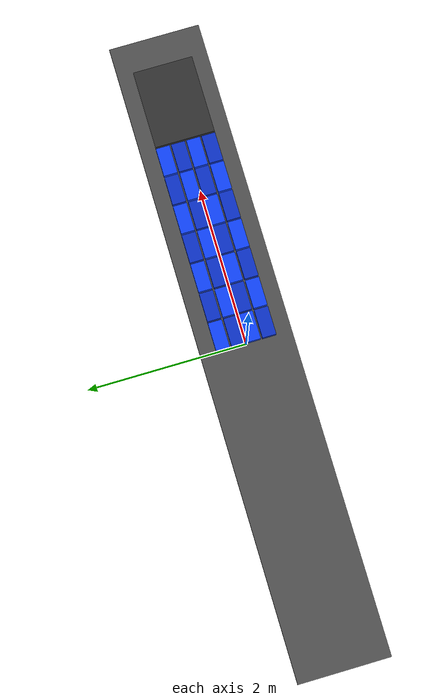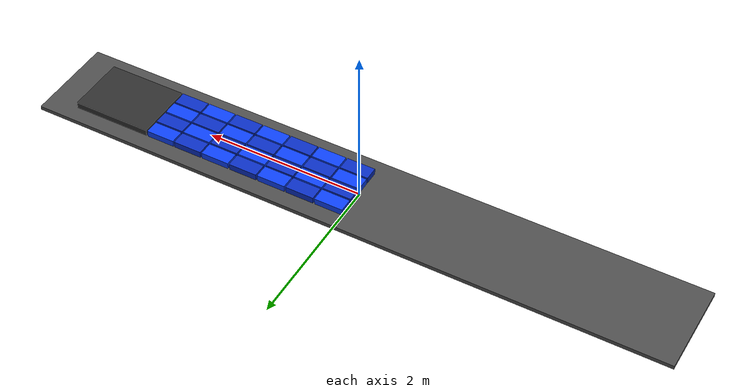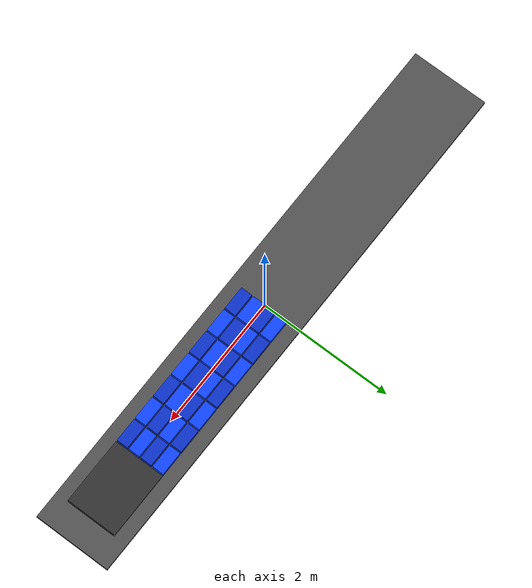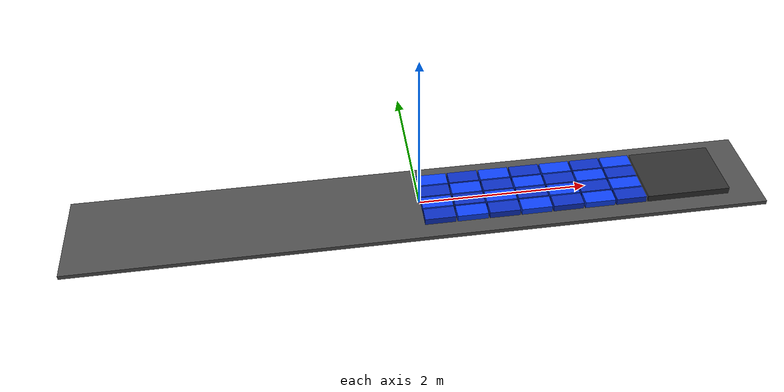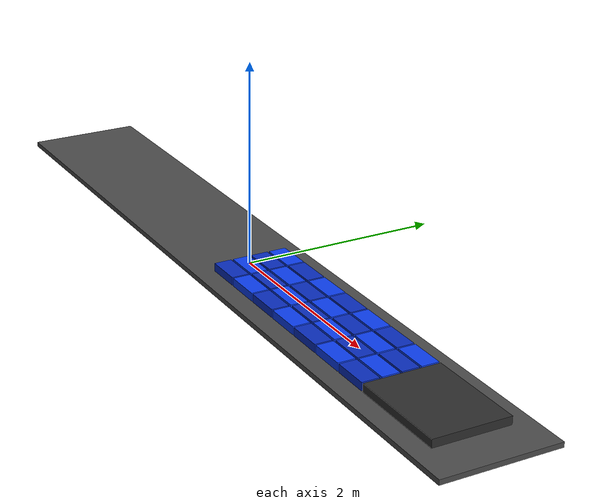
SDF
<sdf version="1.10">
 <world name="matrix_14x4_stream">
  <model name="platform">
   <static>true</static>
   <pose>0 0 -0.025 0 0 0</pose>
   <link name="platform_link">
    <collision name="platform_collision">
     <geometry><box><size>8.140000
                1.160000
                0.05</size></box></geometry>
    </collision>
    <visual name="platform_visual">
     <geometry><box><size>8.140000
                1.160000
                0.05</size></box></geometry>
     <material><ambient>0.20 0.20 0.20 1</ambient><diffuse>0.30 0.30 0.30 1</diffuse></material>
    </visual>
   </link>
  </model>
  <model name="cell_r12_c00">
   <static>true</static>
   <pose>2.090000 -0.292500 0 0 0 0</pose>
   <link name="belt">
    <pose>0 0 0.040000 0 0 0</pose>
    <collision name="belt_collision">
     <max_contacts>4</max_contacts>
     <geometry><box><size>0.360000 0.175000 0.080000</size></box></geometry>
     <surface><friction><ode><mu>0.8</mu><mu2>0.2</mu2><fdir1>1 0 0</fdir1></ode></friction></surface>
    </collision>
    <visual name="belt_visual">
     <geometry><box><size>0.360000 0.175000 0.080000</size></box></geometry>
     <material><ambient>0.050 0.250 0.950 1</ambient><diffuse>0.050 0.250 0.950 1</diffuse></material>
    </visual>
   </link>
   <plugin filename="gz-sim-track-controller-system" name="gz::sim::systems::TrackController">
    <link>belt</link>
    <track_orientation>0 0 0</track_orientation>
    <velocity_topic>/singulator/cell/r12_c00/cmd_vel</velocity_topic>
    <odometry_topic>/singulator/cell/r12_c00/odometry</odometry_topic>
    <odometry_publish_frequency>1</odometry_publish_frequency>
    <min_velocity>-2.0</min_velocity>
    <max_velocity>2.0</max_velocity>
    <min_acceleration>-2.5</min_acceleration>
    <max_acceleration>2.5</max_acceleration>
    <min_jerk>-10.0</min_jerk>
    <max_jerk>10.0</max_jerk>
    <max_command_age>2.0</max_command_age>
   </plugin>
  </model>
  <model name="cell_r12_c01">
   <static>true</static>
   <pose>2.090000 -0.097500 0 0 0 0</pose>
   <link name="belt">
    <pose>0 0 0.040000 0 0 0</pose>
    <collision name="belt_collision">
     <max_contacts>4</max_contacts>
     <geometry><box><size>0.360000 0.175000 0.080000</size></box></geometry>
     <surface><friction><ode><mu>0.8</mu><mu2>0.2</mu2><fdir1>1 0 0</fdir1></ode></friction></surface>
    </collision>
    <visual name="belt_visual">
     <geometry><box><size>0.360000 0.175000 0.080000</size></box></geometry>
     <material><ambient>0.040 0.180 0.750 1</ambient><diffuse>0.040 0.180 0.750 1</diffuse></material>
    </visual>
   </link>
   <plugin filename="gz-sim-track-controller-system" name="gz::sim::systems::TrackController">
    <link>belt</link>
    <track_orientation>0 0 0</track_orientation>
    <velocity_topic>/singulator/cell/r12_c01/cmd_vel</velocity_topic>
    <odometry_topic>/singulator/cell/r12_c01/odometry</odometry_topic>
    <odometry_publish_frequency>1</odometry_publish_frequency>
    <min_velocity>-2.0</min_velocity>
    <max_velocity>2.0</max_velocity>
    <min_acceleration>-2.5</min_acceleration>
    <max_acceleration>2.5</max_acceleration>
    <min_jerk>-10.0</min_jerk>
    <max_jerk>10.0</max_jerk>
    <max_command_age>2.0</max_command_age>
   </plugin>
  </model>
  <model name="cell_r12_c02">
   <static>true</static>
   <pose>2.090000 0.097500 0 0 0 0</pose>
   <link name="belt">
    <pose>0 0 0.040000 0 0 0</pose>
    <collision name="belt_collision">
     <max_contacts>4</max_contacts>
     <geometry><box><size>0.360000 0.175000 0.080000</size></box></geometry>
     <surface><friction><ode><mu>0.8</mu><mu2>0.2</mu2><fdir1>1 0 0</fdir1></ode></friction></surface>
    </collision>
    <visual name="belt_visual">
     <geometry><box><size>0.360000 0.175000 0.080000</size></box></geometry>
     <material><ambient>0.050 0.250 0.950 1</ambient><diffuse>0.050 0.250 0.950 1</diffuse></material>
    </visual>
   </link>
   <plugin filename="gz-sim-track-controller-system" name="gz::sim::systems::TrackController">
    <link>belt</link>
    <track_orientation>0 0 0</track_orientation>
    <velocity_topic>/singulator/cell/r12_c02/cmd_vel</velocity_topic>
    <odometry_topic>/singulator/cell/r12_c02/odometry</odometry_topic>
    <odometry_publish_frequency>1</odometry_publish_frequency>
    <min_velocity>-2.0</min_velocity>
    <max_velocity>2.0</max_velocity>
    <min_acceleration>-2.5</min_acceleration>
    <max_acceleration>2.5</max_acceleration>
    <min_jerk>-10.0</min_jerk>
    <max_jerk>10.0</max_jerk>
    <max_command_age>2.0</max_command_age>
   </plugin>
  </model>
  <model name="cell_r12_c03">
   <static>true</static>
   <pose>2.090000 0.292500 0 0 0 0</pose>
   <link name="belt">
    <pose>0 0 0.040000 0 0 0</pose>
    <collision name="belt_collision">
     <max_contacts>4</max_contacts>
     <geometry><box><size>0.360000 0.175000 0.080000</size></box></geometry>
     <surface><friction><ode><mu>0.8</mu><mu2>0.2</mu2><fdir1>1 0 0</fdir1></ode></friction></surface>
    </collision>
    <visual name="belt_visual">
     <geometry><box><size>0.360000 0.175000 0.080000</size></box></geometry>
     <material><ambient>0.040 0.180 0.750 1</ambient><diffuse>0.040 0.180 0.750 1</diffuse></material>
    </visual>
   </link>
   <plugin filename="gz-sim-track-controller-system" name="gz::sim::systems::TrackController">
    <link>belt</link>
    <track_orientation>0 0 0</track_orientation>
    <velocity_topic>/singulator/cell/r12_c03/cmd_vel</velocity_topic>
    <odometry_topic>/singulator/cell/r12_c03/odometry</odometry_topic>
    <odometry_publish_frequency>1</odometry_publish_frequency>
    <min_velocity>-2.0</min_velocity>
    <max_velocity>2.0</max_velocity>
    <min_acceleration>-2.5</min_acceleration>
    <max_acceleration>2.5</max_acceleration>
    <min_jerk>-10.0</min_jerk>
    <max_jerk>10.0</max_jerk>
    <max_command_age>2.0</max_command_age>
   </plugin>
  </model>
  <model name="cell_r13_c00">
   <static>true</static>
   <pose>2.470000 -0.292500 0 0 0 0</pose>
   <link name="belt">
    <pose>0 0 0.040000 0 0 0</pose>
    <collision name="belt_collision">
     <max_contacts>4</max_contacts>
     <geometry><box><size>0.360000 0.175000 0.080000</size></box></geometry>
     <surface><friction><ode><mu>0.8</mu><mu2>0.2</mu2><fdir1>1 0 0</fdir1></ode></friction></surface>
    </collision>
    <visual name="belt_visual">
     <geometry><box><size>0.360000 0.175000 0.080000</size></box></geometry>
     <material><ambient>0.040 0.180 0.750 1</ambient><diffuse>0.040 0.180 0.750 1</diffuse></material>
    </visual>
   </link>
   <plugin filename="gz-sim-track-controller-system" name="gz::sim::systems::TrackController">
    <link>belt</link>
    <track_orientation>0 0 0</track_orientation>
    <velocity_topic>/singulator/cell/r13_c00/cmd_vel</velocity_topic>
    <odometry_topic>/singulator/cell/r13_c00/odometry</odometry_topic>
    <odometry_publish_frequency>1</odometry_publish_frequency>
    <min_velocity>-2.0</min_velocity>
    <max_velocity>2.0</max_velocity>
    <min_acceleration>-2.5</min_acceleration>
    <max_acceleration>2.5</max_acceleration>
    <min_jerk>-10.0</min_jerk>
    <max_jerk>10.0</max_jerk>
    <max_command_age>2.0</max_command_age>
   </plugin>
  </model>
  <model name="cell_r13_c01">
   <static>true</static>
   <pose>2.470000 -0.097500 0 0 0 0</pose>
   <link name="belt">
    <pose>0 0 0.040000 0 0 0</pose>
    <collision name="belt_collision">
     <max_contacts>4</max_contacts>
     <geometry><box><size>0.360000 0.175000 0.080000</size></box></geometry>
     <surface><friction><ode><mu>0.8</mu><mu2>0.2</mu2><fdir1>1 0 0</fdir1></ode></friction></surface>
    </collision>
    <visual name="belt_visual">
     <geometry><box><size>0.360000 0.175000 0.080000</size></box></geometry>
     <material><ambient>0.050 0.250 0.950 1</ambient><diffuse>0.050 0.250 0.950 1</diffuse></material>
    </visual>
   </link>
   <plugin filename="gz-sim-track-controller-system" name="gz::sim::systems::TrackController">
    <link>belt</link>
    <track_orientation>0 0 0</track_orientation>
    <velocity_topic>/singulator/cell/r13_c01/cmd_vel</velocity_topic>
    <odometry_topic>/singulator/cell/r13_c01/odometry</odometry_topic>
    <odometry_publish_frequency>1</odometry_publish_frequency>
    <min_velocity>-2.0</min_velocity>
    <max_velocity>2.0</max_velocity>
    <min_acceleration>-2.5</min_acceleration>
    <max_acceleration>2.5</max_acceleration>
    <min_jerk>-10.0</min_jerk>
    <max_jerk>10.0</max_jerk>
    <max_command_age>2.0</max_command_age>
   </plugin>
  </model>
  <model name="cell_r13_c02">
   <static>true</static>
   <pose>2.470000 0.097500 0 0 0 0</pose>
   <link name="belt">
    <pose>0 0 0.040000 0 0 0</pose>
    <collision name="belt_collision">
     <max_contacts>4</max_contacts>
     <geometry><box><size>0.360000 0.175000 0.080000</size></box></geometry>
     <surface><friction><ode><mu>0.8</mu><mu2>0.2</mu2><fdir1>1 0 0</fdir1></ode></friction></surface>
    </collision>
    <visual name="belt_visual">
     <geometry><box><size>0.360000 0.175000 0.080000</size></box></geometry>
     <material><ambient>0.040 0.180 0.750 1</ambient><diffuse>0.040 0.180 0.750 1</diffuse></material>
    </visual>
   </link>
   <plugin filename="gz-sim-track-controller-system" name="gz::sim::systems::TrackController">
    <link>belt</link>
    <track_orientation>0 0 0</track_orientation>
    <velocity_topic>/singulator/cell/r13_c02/cmd_vel</velocity_topic>
    <odometry_topic>/singulator/cell/r13_c02/odometry</odometry_topic>
    <odometry_publish_frequency>1</odometry_publish_frequency>
    <min_velocity>-2.0</min_velocity>
    <max_velocity>2.0</max_velocity>
    <min_acceleration>-2.5</min_acceleration>
    <max_acceleration>2.5</max_acceleration>
    <min_jerk>-10.0</min_jerk>
    <max_jerk>10.0</max_jerk>
    <max_command_age>2.0</max_command_age>
   </plugin>
  </model>
  <model name="cell_r13_c03">
   <static>true</static>
   <pose>2.470000 0.292500 0 0 0 0</pose>
   <link name="belt">
    <pose>0 0 0.040000 0 0 0</pose>
    <collision name="belt_collision">
     <max_contacts>4</max_contacts>
     <geometry><box><size>0.360000 0.175000 0.080000</size></box></geometry>
     <surface><friction><ode><mu>0.8</mu><mu2>0.2</mu2><fdir1>1 0 0</fdir1></ode></friction></surface>
    </collision>
    <visual name="belt_visual">
     <geometry><box><size>0.360000 0.175000 0.080000</size></box></geometry>
     <material><ambient>0.050 0.250 0.950 1</ambient><diffuse>0.050 0.250 0.950 1</diffuse></material>
    </visual>
   </link>
   <plugin filename="gz-sim-track-controller-system" name="gz::sim::systems::TrackController">
    <link>belt</link>
    <track_orientation>0 0 0</track_orientation>
    <velocity_topic>/singulator/cell/r13_c03/cmd_vel</velocity_topic>
    <odometry_topic>/singulator/cell/r13_c03/odometry</odometry_topic>
    <odometry_publish_frequency>1</odometry_publish_frequency>
    <min_velocity>-2.0</min_velocity>
    <max_velocity>2.0</max_velocity>
    <min_acceleration>-2.5</min_acceleration>
    <max_acceleration>2.5</max_acceleration>
    <min_jerk>-10.0</min_jerk>
    <max_jerk>10.0</max_jerk>
    <max_command_age>2.0</max_command_age>
   </plugin>
  </model>
  <model name="cell_r07_c00">
   <static>true</static>
   <pose>0.190000 -0.292500 0 0 0 0</pose>
   <link name="belt">
    <pose>0 0 0.040000 0 0 0</pose>
    <collision name="belt_collision">
     <max_contacts>4</max_contacts>
     <geometry><box><size>0.360000 0.175000 0.080000</size></box></geometry>
     <surface><friction><ode><mu>0.8</mu><mu2>0.2</mu2><fdir1>1 0 0</fdir1></ode></friction></surface>
    </collision>
    <visual name="belt_visual">
     <geometry><box><size>0.360000 0.175000 0.080000</size></box></geometry>
     <material><ambient>0.040 0.180 0.750 1</ambient><diffuse>0.040 0.180 0.750 1</diffuse></material>
    </visual>
   </link>
   <plugin filename="gz-sim-track-controller-system" name="gz::sim::systems::TrackController">
    <link>belt</link>
    <track_orientation>0 0 0</track_orientation>
    <velocity_topic>/singulator/cell/r07_c00/cmd_vel</velocity_topic>
    <odometry_topic>/singulator/cell/r07_c00/odometry</odometry_topic>
    <odometry_publish_frequency>1</odometry_publish_frequency>
    <min_velocity>-2.0</min_velocity>
    <max_velocity>2.0</max_velocity>
    <min_acceleration>-2.5</min_acceleration>
    <max_acceleration>2.5</max_acceleration>
    <min_jerk>-10.0</min_jerk>
    <max_jerk>10.0</max_jerk>
    <max_command_age>2.0</max_command_age>
   </plugin>
  </model>
  <model name="cell_r07_c01">
   <static>true</static>
   <pose>0.190000 -0.097500 0 0 0 0</pose>
   <link name="belt">
    <pose>0 0 0.040000 0 0 0</pose>
    <collision name="belt_collision">
     <max_contacts>4</max_contacts>
     <geometry><box><size>0.360000 0.175000 0.080000</size></box></geometry>
     <surface><friction><ode><mu>0.8</mu><mu2>0.2</mu2><fdir1>1 0 0</fdir1></ode></friction></surface>
    </collision>
    <visual name="belt_visual">
     <geometry><box><size>0.360000 0.175000 0.080000</size></box></geometry>
     <material><ambient>0.050 0.250 0.950 1</ambient><diffuse>0.050 0.250 0.950 1</diffuse></material>
    </visual>
   </link>
   <plugin filename="gz-sim-track-controller-system" name="gz::sim::systems::TrackController">
    <link>belt</link>
    <track_orientation>0 0 0</track_orientation>
    <velocity_topic>/singulator/cell/r07_c01/cmd_vel</velocity_topic>
    <odometry_topic>/singulator/cell/r07_c01/odometry</odometry_topic>
    <odometry_publish_frequency>1</odometry_publish_frequency>
    <min_velocity>-2.0</min_velocity>
    <max_velocity>2.0</max_velocity>
    <min_acceleration>-2.5</min_acceleration>
    <max_acceleration>2.5</max_acceleration>
    <min_jerk>-10.0</min_jerk>
    <max_jerk>10.0</max_jerk>
    <max_command_age>2.0</max_command_age>
   </plugin>
  </model>
  <model name="cell_r07_c02">
   <static>true</static>
   <pose>0.190000 0.097500 0 0 0 0</pose>
   <link name="belt">
    <pose>0 0 0.040000 0 0 0</pose>
    <collision name="belt_collision">
     <max_contacts>4</max_contacts>
     <geometry><box><size>0.360000 0.175000 0.080000</size></box></geometry>
     <surface><friction><ode><mu>0.8</mu><mu2>0.2</mu2><fdir1>1 0 0</fdir1></ode></friction></surface>
    </collision>
    <visual name="belt_visual">
     <geometry><box><size>0.360000 0.175000 0.080000</size></box></geometry>
     <material><ambient>0.040 0.180 0.750 1</ambient><diffuse>0.040 0.180 0.750 1</diffuse></material>
    </visual>
   </link>
   <plugin filename="gz-sim-track-controller-system" name="gz::sim::systems::TrackController">
    <link>belt</link>
    <track_orientation>0 0 0</track_orientation>
    <velocity_topic>/singulator/cell/r07_c02/cmd_vel</velocity_topic>
    <odometry_topic>/singulator/cell/r07_c02/odometry</odometry_topic>
    <odometry_publish_frequency>1</odometry_publish_frequency>
    <min_velocity>-2.0</min_velocity>
    <max_velocity>2.0</max_velocity>
    <min_acceleration>-2.5</min_acceleration>
    <max_acceleration>2.5</max_acceleration>
    <min_jerk>-10.0</min_jerk>
    <max_jerk>10.0</max_jerk>
    <max_command_age>2.0</max_command_age>
   </plugin>
  </model>
  <model name="cell_r07_c03">
   <static>true</static>
   <pose>0.190000 0.292500 0 0 0 0</pose>
   <link name="belt">
    <pose>0 0 0.040000 0 0 0</pose>
    <collision name="belt_collision">
     <max_contacts>4</max_contacts>
     <geometry><box><size>0.360000 0.175000 0.080000</size></box></geometry>
     <surface><friction><ode><mu>0.8</mu><mu2>0.2</mu2><fdir1>1 0 0</fdir1></ode></friction></surface>
    </collision>
    <visual name="belt_visual">
     <geometry><box><size>0.360000 0.175000 0.080000</size></box></geometry>
     <material><ambient>0.050 0.250 0.950 1</ambient><diffuse>0.050 0.250 0.950 1</diffuse></material>
    </visual>
   </link>
   <plugin filename="gz-sim-track-controller-system" name="gz::sim::systems::TrackController">
    <link>belt</link>
    <track_orientation>0 0 0</track_orientation>
    <velocity_topic>/singulator/cell/r07_c03/cmd_vel</velocity_topic>
    <odometry_topic>/singulator/cell/r07_c03/odometry</odometry_topic>
    <odometry_publish_frequency>1</odometry_publish_frequency>
    <min_velocity>-2.0</min_velocity>
    <max_velocity>2.0</max_velocity>
    <min_acceleration>-2.5</min_acceleration>
    <max_acceleration>2.5</max_acceleration>
    <min_jerk>-10.0</min_jerk>
    <max_jerk>10.0</max_jerk>
    <max_command_age>2.0</max_command_age>
   </plugin>
  </model>
  <model name="cell_r08_c00">
   <static>true</static>
   <pose>0.570000 -0.292500 0 0 0 0</pose>
   <link name="belt">
    <pose>0 0 0.040000 0 0 0</pose>
    <collision name="belt_collision">
     <max_contacts>4</max_contacts>
     <geometry><box><size>0.360000 0.175000 0.080000</size></box></geometry>
     <surface><friction><ode><mu>0.8</mu><mu2>0.2</mu2><fdir1>1 0 0</fdir1></ode></friction></surface>
    </collision>
    <visual name="belt_visual">
     <geometry><box><size>0.360000 0.175000 0.080000</size></box></geometry>
     <material><ambient>0.050 0.250 0.950 1</ambient><diffuse>0.050 0.250 0.950 1</diffuse></material>
    </visual>
   </link>
   <plugin filename="gz-sim-track-controller-system" name="gz::sim::systems::TrackController">
    <link>belt</link>
    <track_orientation>0 0 0</track_orientation>
    <velocity_topic>/singulator/cell/r08_c00/cmd_vel</velocity_topic>
    <odometry_topic>/singulator/cell/r08_c00/odometry</odometry_topic>
    <odometry_publish_frequency>1</odometry_publish_frequency>
    <min_velocity>-2.0</min_velocity>
    <max_velocity>2.0</max_velocity>
    <min_acceleration>-2.5</min_acceleration>
    <max_acceleration>2.5</max_acceleration>
    <min_jerk>-10.0</min_jerk>
    <max_jerk>10.0</max_jerk>
    <max_command_age>2.0</max_command_age>
   </plugin>
  </model>
  <model name="cell_r08_c01">
   <static>true</static>
   <pose>0.570000 -0.097500 0 0 0 0</pose>
   <link name="belt">
    <pose>0 0 0.040000 0 0 0</pose>
    <collision name="belt_collision">
     <max_contacts>4</max_contacts>
     <geometry><box><size>0.360000 0.175000 0.080000</size></box></geometry>
     <surface><friction><ode><mu>0.8</mu><mu2>0.2</mu2><fdir1>1 0 0</fdir1></ode></friction></surface>
    </collision>
    <visual name="belt_visual">
     <geometry><box><size>0.360000 0.175000 0.080000</size></box></geometry>
     <material><ambient>0.040 0.180 0.750 1</ambient><diffuse>0.040 0.180 0.750 1</diffuse></material>
    </visual>
   </link>
   <plugin filename="gz-sim-track-controller-system" name="gz::sim::systems::TrackController">
    <link>belt</link>
    <track_orientation>0 0 0</track_orientation>
    <velocity_topic>/singulator/cell/r08_c01/cmd_vel</velocity_topic>
    <odometry_topic>/singulator/cell/r08_c01/odometry</odometry_topic>
    <odometry_publish_frequency>1</odometry_publish_frequency>
    <min_velocity>-2.0</min_velocity>
    <max_velocity>2.0</max_velocity>
    <min_acceleration>-2.5</min_acceleration>
    <max_acceleration>2.5</max_acceleration>
    <min_jerk>-10.0</min_jerk>
    <max_jerk>10.0</max_jerk>
    <max_command_age>2.0</max_command_age>
   </plugin>
  </model>
  <model name="cell_r08_c02">
   <static>true</static>
   <pose>0.570000 0.097500 0 0 0 0</pose>
   <link name="belt">
    <pose>0 0 0.040000 0 0 0</pose>
    <collision name="belt_collision">
     <max_contacts>4</max_contacts>
     <geometry><box><size>0.360000 0.175000 0.080000</size></box></geometry>
     <surface><friction><ode><mu>0.8</mu><mu2>0.2</mu2><fdir1>1 0 0</fdir1></ode></friction></surface>
    </collision>
    <visual name="belt_visual">
     <geometry><box><size>0.360000 0.175000 0.080000</size></box></geometry>
     <material><ambient>0.050 0.250 0.950 1</ambient><diffuse>0.050 0.250 0.950 1</diffuse></material>
    </visual>
   </link>
   <plugin filename="gz-sim-track-controller-system" name="gz::sim::systems::TrackController">
    <link>belt</link>
    <track_orientation>0 0 0</track_orientation>
    <velocity_topic>/singulator/cell/r08_c02/cmd_vel</velocity_topic>
    <odometry_topic>/singulator/cell/r08_c02/odometry</odometry_topic>
    <odometry_publish_frequency>1</odometry_publish_frequency>
    <min_velocity>-2.0</min_velocity>
    <max_velocity>2.0</max_velocity>
    <min_acceleration>-2.5</min_acceleration>
    <max_acceleration>2.5</max_acceleration>
    <min_jerk>-10.0</min_jerk>
    <max_jerk>10.0</max_jerk>
    <max_command_age>2.0</max_command_age>
   </plugin>
  </model>
  <model name="cell_r08_c03">
   <static>true</static>
   <pose>0.570000 0.292500 0 0 0 0</pose>
   <link name="belt">
    <pose>0 0 0.040000 0 0 0</pose>
    <collision name="belt_collision">
     <max_contacts>4</max_contacts>
     <geometry><box><size>0.360000 0.175000 0.080000</size></box></geometry>
     <surface><friction><ode><mu>0.8</mu><mu2>0.2</mu2><fdir1>1 0 0</fdir1></ode></friction></surface>
    </collision>
    <visual name="belt_visual">
     <geometry><box><size>0.360000 0.175000 0.080000</size></box></geometry>
     <material><ambient>0.040 0.180 0.750 1</ambient><diffuse>0.040 0.180 0.750 1</diffuse></material>
    </visual>
   </link>
   <plugin filename="gz-sim-track-controller-system" name="gz::sim::systems::TrackController">
    <link>belt</link>
    <track_orientation>0 0 0</track_orientation>
    <velocity_topic>/singulator/cell/r08_c03/cmd_vel</velocity_topic>
    <odometry_topic>/singulator/cell/r08_c03/odometry</odometry_topic>
    <odometry_publish_frequency>1</odometry_publish_frequency>
    <min_velocity>-2.0</min_velocity>
    <max_velocity>2.0</max_velocity>
    <min_acceleration>-2.5</min_acceleration>
    <max_acceleration>2.5</max_acceleration>
    <min_jerk>-10.0</min_jerk>
    <max_jerk>10.0</max_jerk>
    <max_command_age>2.0</max_command_age>
   </plugin>
  </model>
  <model name="cell_r09_c00">
   <static>true</static>
   <pose>0.950000 -0.292500 0 0 0 0</pose>
   <link name="belt">
    <pose>0 0 0.040000 0 0 0</pose>
    <collision name="belt_collision">
     <max_contacts>4</max_contacts>
     <geometry><box><size>0.360000 0.175000 0.080000</size></box></geometry>
     <surface><friction><ode><mu>0.8</mu><mu2>0.2</mu2><fdir1>1 0 0</fdir1></ode></friction></surface>
    </collision>
    <visual name="belt_visual">
     <geometry><box><size>0.360000 0.175000 0.080000</size></box></geometry>
     <material><ambient>0.040 0.180 0.750 1</ambient><diffuse>0.040 0.180 0.750 1</diffuse></material>
    </visual>
   </link>
   <plugin filename="gz-sim-track-controller-system" name="gz::sim::systems::TrackController">
    <link>belt</link>
    <track_orientation>0 0 0</track_orientation>
    <velocity_topic>/singulator/cell/r09_c00/cmd_vel</velocity_topic>
    <odometry_topic>/singulator/cell/r09_c00/odometry</odometry_topic>
    <odometry_publish_frequency>1</odometry_publish_frequency>
    <min_velocity>-2.0</min_velocity>
    <max_velocity>2.0</max_velocity>
    <min_acceleration>-2.5</min_acceleration>
    <max_acceleration>2.5</max_acceleration>
    <min_jerk>-10.0</min_jerk>
    <max_jerk>10.0</max_jerk>
    <max_command_age>2.0</max_command_age>
   </plugin>
  </model>
  <model name="cell_r09_c01">
   <static>true</static>
   <pose>0.950000 -0.097500 0 0 0 0</pose>
   <link name="belt">
    <pose>0 0 0.040000 0 0 0</pose>
    <collision name="belt_collision">
     <max_contacts>4</max_contacts>
     <geometry><box><size>0.360000 0.175000 0.080000</size></box></geometry>
     <surface><friction><ode><mu>0.8</mu><mu2>0.2</mu2><fdir1>1 0 0</fdir1></ode></friction></surface>
    </collision>
    <visual name="belt_visual">
     <geometry><box><size>0.360000 0.175000 0.080000</size></box></geometry>
     <material><ambient>0.050 0.250 0.950 1</ambient><diffuse>0.050 0.250 0.950 1</diffuse></material>
    </visual>
   </link>
   <plugin filename="gz-sim-track-controller-system" name="gz::sim::systems::TrackController">
    <link>belt</link>
    <track_orientation>0 0 0</track_orientation>
    <velocity_topic>/singulator/cell/r09_c01/cmd_vel</velocity_topic>
    <odometry_topic>/singulator/cell/r09_c01/odometry</odometry_topic>
    <odometry_publish_frequency>1</odometry_publish_frequency>
    <min_velocity>-2.0</min_velocity>
    <max_velocity>2.0</max_velocity>
    <min_acceleration>-2.5</min_acceleration>
    <max_acceleration>2.5</max_acceleration>
    <min_jerk>-10.0</min_jerk>
    <max_jerk>10.0</max_jerk>
    <max_command_age>2.0</max_command_age>
   </plugin>
  </model>
  <model name="cell_r09_c02">
   <static>true</static>
   <pose>0.950000 0.097500 0 0 0 0</pose>
   <link name="belt">
    <pose>0 0 0.040000 0 0 0</pose>
    <collision name="belt_collision">
     <max_contacts>4</max_contacts>
     <geometry><box><size>0.360000 0.175000 0.080000</size></box></geometry>
     <surface><friction><ode><mu>0.8</mu><mu2>0.2</mu2><fdir1>1 0 0</fdir1></ode></friction></surface>
    </collision>
    <visual name="belt_visual">
     <geometry><box><size>0.360000 0.175000 0.080000</size></box></geometry>
     <material><ambient>0.040 0.180 0.750 1</ambient><diffuse>0.040 0.180 0.750 1</diffuse></material>
    </visual>
   </link>
   <plugin filename="gz-sim-track-controller-system" name="gz::sim::systems::TrackController">
    <link>belt</link>
    <track_orientation>0 0 0</track_orientation>
    <velocity_topic>/singulator/cell/r09_c02/cmd_vel</velocity_topic>
    <odometry_topic>/singulator/cell/r09_c02/odometry</odometry_topic>
    <odometry_publish_frequency>1</odometry_publish_frequency>
    <min_velocity>-2.0</min_velocity>
    <max_velocity>2.0</max_velocity>
    <min_acceleration>-2.5</min_acceleration>
    <max_acceleration>2.5</max_acceleration>
    <min_jerk>-10.0</min_jerk>
    <max_jerk>10.0</max_jerk>
    <max_command_age>2.0</max_command_age>
   </plugin>
  </model>
  <model name="cell_r09_c03">
   <static>true</static>
   <pose>0.950000 0.292500 0 0 0 0</pose>
   <link name="belt">
    <pose>0 0 0.040000 0 0 0</pose>
    <collision name="belt_collision">
     <max_contacts>4</max_contacts>
     <geometry><box><size>0.360000 0.175000 0.080000</size></box></geometry>
     <surface><friction><ode><mu>0.8</mu><mu2>0.2</mu2><fdir1>1 0 0</fdir1></ode></friction></surface>
    </collision>
    <visual name="belt_visual">
     <geometry><box><size>0.360000 0.175000 0.080000</size></box></geometry>
     <material><ambient>0.050 0.250 0.950 1</ambient><diffuse>0.050 0.250 0.950 1</diffuse></material>
    </visual>
   </link>
   <plugin filename="gz-sim-track-controller-system" name="gz::sim::systems::TrackController">
    <link>belt</link>
    <track_orientation>0 0 0</track_orientation>
    <velocity_topic>/singulator/cell/r09_c03/cmd_vel</velocity_topic>
    <odometry_topic>/singulator/cell/r09_c03/odometry</odometry_topic>
    <odometry_publish_frequency>1</odometry_publish_frequency>
    <min_velocity>-2.0</min_velocity>
    <max_velocity>2.0</max_velocity>
    <min_acceleration>-2.5</min_acceleration>
    <max_acceleration>2.5</max_acceleration>
    <min_jerk>-10.0</min_jerk>
    <max_jerk>10.0</max_jerk>
    <max_command_age>2.0</max_command_age>
   </plugin>
  </model>
  <model name="cell_r10_c00">
   <static>true</static>
   <pose>1.330000 -0.292500 0 0 0 0</pose>
   <link name="belt">
    <pose>0 0 0.040000 0 0 0</pose>
    <collision name="belt_collision">
     <max_contacts>4</max_contacts>
     <geometry><box><size>0.360000 0.175000 0.080000</size></box></geometry>
     <surface><friction><ode><mu>0.8</mu><mu2>0.2</mu2><fdir1>1 0 0</fdir1></ode></friction></surface>
    </collision>
    <visual name="belt_visual">
     <geometry><box><size>0.360000 0.175000 0.080000</size></box></geometry>
     <material><ambient>0.050 0.250 0.950 1</ambient><diffuse>0.050 0.250 0.950 1</diffuse></material>
    </visual>
   </link>
   <plugin filename="gz-sim-track-controller-system" name="gz::sim::systems::TrackController">
    <link>belt</link>
    <track_orientation>0 0 0</track_orientation>
    <velocity_topic>/singulator/cell/r10_c00/cmd_vel</velocity_topic>
    <odometry_topic>/singulator/cell/r10_c00/odometry</odometry_topic>
    <odometry_publish_frequency>1</odometry_publish_frequency>
    <min_velocity>-2.0</min_velocity>
    <max_velocity>2.0</max_velocity>
    <min_acceleration>-2.5</min_acceleration>
    <max_acceleration>2.5</max_acceleration>
    <min_jerk>-10.0</min_jerk>
    <max_jerk>10.0</max_jerk>
    <max_command_age>2.0</max_command_age>
   </plugin>
  </model>
  <model name="cell_r10_c01">
   <static>true</static>
   <pose>1.330000 -0.097500 0 0 0 0</pose>
   <link name="belt">
    <pose>0 0 0.040000 0 0 0</pose>
    <collision name="belt_collision">
     <max_contacts>4</max_contacts>
     <geometry><box><size>0.360000 0.175000 0.080000</size></box></geometry>
     <surface><friction><ode><mu>0.8</mu><mu2>0.2</mu2><fdir1>1 0 0</fdir1></ode></friction></surface>
    </collision>
    <visual name="belt_visual">
     <geometry><box><size>0.360000 0.175000 0.080000</size></box></geometry>
     <material><ambient>0.040 0.180 0.750 1</ambient><diffuse>0.040 0.180 0.750 1</diffuse></material>
    </visual>
   </link>
   <plugin filename="gz-sim-track-controller-system" name="gz::sim::systems::TrackController">
    <link>belt</link>
    <track_orientation>0 0 0</track_orientation>
    <velocity_topic>/singulator/cell/r10_c01/cmd_vel</velocity_topic>
    <odometry_topic>/singulator/cell/r10_c01/odometry</odometry_topic>
    <odometry_publish_frequency>1</odometry_publish_frequency>
    <min_velocity>-2.0</min_velocity>
    <max_velocity>2.0</max_velocity>
    <min_acceleration>-2.5</min_acceleration>
    <max_acceleration>2.5</max_acceleration>
    <min_jerk>-10.0</min_jerk>
    <max_jerk>10.0</max_jerk>
    <max_command_age>2.0</max_command_age>
   </plugin>
  </model>
  <model name="cell_r10_c02">
   <static>true</static>
   <pose>1.330000 0.097500 0 0 0 0</pose>
   <link name="belt">
    <pose>0 0 0.040000 0 0 0</pose>
    <collision name="belt_collision">
     <max_contacts>4</max_contacts>
     <geometry><box><size>0.360000 0.175000 0.080000</size></box></geometry>
     <surface><friction><ode><mu>0.8</mu><mu2>0.2</mu2><fdir1>1 0 0</fdir1></ode></friction></surface>
    </collision>
    <visual name="belt_visual">
     <geometry><box><size>0.360000 0.175000 0.080000</size></box></geometry>
     <material><ambient>0.050 0.250 0.950 1</ambient><diffuse>0.050 0.250 0.950 1</diffuse></material>
    </visual>
   </link>
   <plugin filename="gz-sim-track-controller-system" name="gz::sim::systems::TrackController">
    <link>belt</link>
    <track_orientation>0 0 0</track_orientation>
    <velocity_topic>/singulator/cell/r10_c02/cmd_vel</velocity_topic>
    <odometry_topic>/singulator/cell/r10_c02/odometry</odometry_topic>
    <odometry_publish_frequency>1</odometry_publish_frequency>
    <min_velocity>-2.0</min_velocity>
    <max_velocity>2.0</max_velocity>
    <min_acceleration>-2.5</min_acceleration>
    <max_acceleration>2.5</max_acceleration>
    <min_jerk>-10.0</min_jerk>
    <max_jerk>10.0</max_jerk>
    <max_command_age>2.0</max_command_age>
   </plugin>
  </model>
  <model name="cell_r10_c03">
   <static>true</static>
   <pose>1.330000 0.292500 0 0 0 0</pose>
   <link name="belt">
    <pose>0 0 0.040000 0 0 0</pose>
    <collision name="belt_collision">
     <max_contacts>4</max_contacts>
     <geometry><box><size>0.360000 0.175000 0.080000</size></box></geometry>
     <surface><friction><ode><mu>0.8</mu><mu2>0.2</mu2><fdir1>1 0 0</fdir1></ode></friction></surface>
    </collision>
    <visual name="belt_visual">
     <geometry><box><size>0.360000 0.175000 0.080000</size></box></geometry>
     <material><ambient>0.040 0.180 0.750 1</ambient><diffuse>0.040 0.180 0.750 1</diffuse></material>
    </visual>
   </link>
   <plugin filename="gz-sim-track-controller-system" name="gz::sim::systems::TrackController">
    <link>belt</link>
    <track_orientation>0 0 0</track_orientation>
    <velocity_topic>/singulator/cell/r10_c03/cmd_vel</velocity_topic>
    <odometry_topic>/singulator/cell/r10_c03/odometry</odometry_topic>
    <odometry_publish_frequency>1</odometry_publish_frequency>
    <min_velocity>-2.0</min_velocity>
    <max_velocity>2.0</max_velocity>
    <min_acceleration>-2.5</min_acceleration>
    <max_acceleration>2.5</max_acceleration>
    <min_jerk>-10.0</min_jerk>
    <max_jerk>10.0</max_jerk>
    <max_command_age>2.0</max_command_age>
   </plugin>
  </model>
  <model name="cell_r11_c00">
   <static>true</static>
   <pose>1.710000 -0.292500 0 0 0 0</pose>
   <link name="belt">
    <pose>0 0 0.040000 0 0 0</pose>
    <collision name="belt_collision">
     <max_contacts>4</max_contacts>
     <geometry><box><size>0.360000 0.175000 0.080000</size></box></geometry>
     <surface><friction><ode><mu>0.8</mu><mu2>0.2</mu2><fdir1>1 0 0</fdir1></ode></friction></surface>
    </collision>
    <visual name="belt_visual">
     <geometry><box><size>0.360000 0.175000 0.080000</size></box></geometry>
     <material><ambient>0.040 0.180 0.750 1</ambient><diffuse>0.040 0.180 0.750 1</diffuse></material>
    </visual>
   </link>
   <plugin filename="gz-sim-track-controller-system" name="gz::sim::systems::TrackController">
    <link>belt</link>
    <track_orientation>0 0 0</track_orientation>
    <velocity_topic>/singulator/cell/r11_c00/cmd_vel</velocity_topic>
    <odometry_topic>/singulator/cell/r11_c00/odometry</odometry_topic>
    <odometry_publish_frequency>1</odometry_publish_frequency>
    <min_velocity>-2.0</min_velocity>
    <max_velocity>2.0</max_velocity>
    <min_acceleration>-2.5</min_acceleration>
    <max_acceleration>2.5</max_acceleration>
    <min_jerk>-10.0</min_jerk>
    <max_jerk>10.0</max_jerk>
    <max_command_age>2.0</max_command_age>
   </plugin>
  </model>
  <model name="cell_r11_c01">
   <static>true</static>
   <pose>1.710000 -0.097500 0 0 0 0</pose>
   <link name="belt">
    <pose>0 0 0.040000 0 0 0</pose>
    <collision name="belt_collision">
     <max_contacts>4</max_contacts>
     <geometry><box><size>0.360000 0.175000 0.080000</size></box></geometry>
     <surface><friction><ode><mu>0.8</mu><mu2>0.2</mu2><fdir1>1 0 0</fdir1></ode></friction></surface>
    </collision>
    <visual name="belt_visual">
     <geometry><box><size>0.360000 0.175000 0.080000</size></box></geometry>
     <material><ambient>0.050 0.250 0.950 1</ambient><diffuse>0.050 0.250 0.950 1</diffuse></material>
    </visual>
   </link>
   <plugin filename="gz-sim-track-controller-system" name="gz::sim::systems::TrackController">
    <link>belt</link>
    <track_orientation>0 0 0</track_orientation>
    <velocity_topic>/singulator/cell/r11_c01/cmd_vel</velocity_topic>
    <odometry_topic>/singulator/cell/r11_c01/odometry</odometry_topic>
    <odometry_publish_frequency>1</odometry_publish_frequency>
    <min_velocity>-2.0</min_velocity>
    <max_velocity>2.0</max_velocity>
    <min_acceleration>-2.5</min_acceleration>
    <max_acceleration>2.5</max_acceleration>
    <min_jerk>-10.0</min_jerk>
    <max_jerk>10.0</max_jerk>
    <max_command_age>2.0</max_command_age>
   </plugin>
  </model>
  <model name="cell_r11_c02">
   <static>true</static>
   <pose>1.710000 0.097500 0 0 0 0</pose>
   <link name="belt">
    <pose>0 0 0.040000 0 0 0</pose>
    <collision name="belt_collision">
     <max_contacts>4</max_contacts>
     <geometry><box><size>0.360000 0.175000 0.080000</size></box></geometry>
     <surface><friction><ode><mu>0.8</mu><mu2>0.2</mu2><fdir1>1 0 0</fdir1></ode></friction></surface>
    </collision>
    <visual name="belt_visual">
     <geometry><box><size>0.360000 0.175000 0.080000</size></box></geometry>
     <material><ambient>0.040 0.180 0.750 1</ambient><diffuse>0.040 0.180 0.750 1</diffuse></material>
    </visual>
   </link>
   <plugin filename="gz-sim-track-controller-system" name="gz::sim::systems::TrackController">
    <link>belt</link>
    <track_orientation>0 0 0</track_orientation>
    <velocity_topic>/singulator/cell/r11_c02/cmd_vel</velocity_topic>
    <odometry_topic>/singulator/cell/r11_c02/odometry</odometry_topic>
    <odometry_publish_frequency>1</odometry_publish_frequency>
    <min_velocity>-2.0</min_velocity>
    <max_velocity>2.0</max_velocity>
    <min_acceleration>-2.5</min_acceleration>
    <max_acceleration>2.5</max_acceleration>
    <min_jerk>-10.0</min_jerk>
    <max_jerk>10.0</max_jerk>
    <max_command_age>2.0</max_command_age>
   </plugin>
  </model>
  <model name="cell_r11_c03">
   <static>true</static>
   <pose>1.710000 0.292500 0 0 0 0</pose>
   <link name="belt">
    <pose>0 0 0.040000 0 0 0</pose>
    <collision name="belt_collision">
     <max_contacts>4</max_contacts>
     <geometry><box><size>0.360000 0.175000 0.080000</size></box></geometry>
     <surface><friction><ode><mu>0.8</mu><mu2>0.2</mu2><fdir1>1 0 0</fdir1></ode></friction></surface>
    </collision>
    <visual name="belt_visual">
     <geometry><box><size>0.360000 0.175000 0.080000</size></box></geometry>
     <material><ambient>0.050 0.250 0.950 1</ambient><diffuse>0.050 0.250 0.950 1</diffuse></material>
    </visual>
   </link>
   <plugin filename="gz-sim-track-controller-system" name="gz::sim::systems::TrackController">
    <link>belt</link>
    <track_orientation>0 0 0</track_orientation>
    <velocity_topic>/singulator/cell/r11_c03/cmd_vel</velocity_topic>
    <odometry_topic>/singulator/cell/r11_c03/odometry</odometry_topic>
    <odometry_publish_frequency>1</odometry_publish_frequency>
    <min_velocity>-2.0</min_velocity>
    <max_velocity>2.0</max_velocity>
    <min_acceleration>-2.5</min_acceleration>
    <max_acceleration>2.5</max_acceleration>
    <min_jerk>-10.0</min_jerk>
    <max_jerk>10.0</max_jerk>
    <max_command_age>2.0</max_command_age>
   </plugin>
  </model>
  <model name="outfeed_conveyor">
   <static>true</static>
   <pose>3.170000 0.000000 0 0 0 0</pose>
   <link name="belt">
    <pose>0 0 0.040000 0 0 0</pose>
    <collision name="belt_collision">
     <max_contacts>4</max_contacts>
     <geometry><box><size>1.000000 0.760000 0.080000</size></box></geometry>
     <surface><friction><ode><mu>0.8</mu><mu2>0.2</mu2><fdir1>1 0 0</fdir1></ode></friction></surface>
    </collision>
    <visual name="belt_visual">
     <geometry><box><size>1.000000 0.760000 0.080000</size></box></geometry>
     <material><ambient>0.180 0.180 0.180 1</ambient><diffuse>0.180 0.180 0.180 1</diffuse></material>
    </visual>
   </link>
   <plugin filename="gz-sim-track-controller-system" name="gz::sim::systems::TrackController">
    <link>belt</link>
    <track_orientation>0 0 0</track_orientation>
    <velocity_topic>/singulator/outfeed/cmd_vel</velocity_topic>
    <odometry_topic>/singulator/outfeed/odometry</odometry_topic>
    <odometry_publish_frequency>1</odometry_publish_frequency>
    <min_velocity>-2.0</min_velocity>
    <max_velocity>2.0</max_velocity>
    <min_acceleration>-2.5</min_acceleration>
    <max_acceleration>2.5</max_acceleration>
    <min_jerk>-10.0</min_jerk>
    <max_jerk>10.0</max_jerk>
    <max_command_age>2.0</max_command_age>
   </plugin>
  </model>
 </world>
</sdf>
